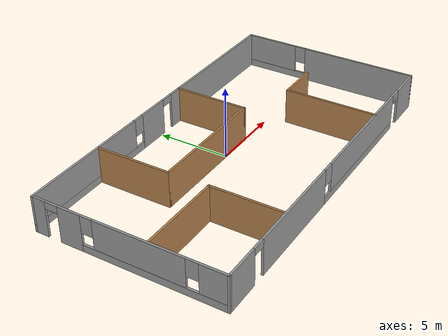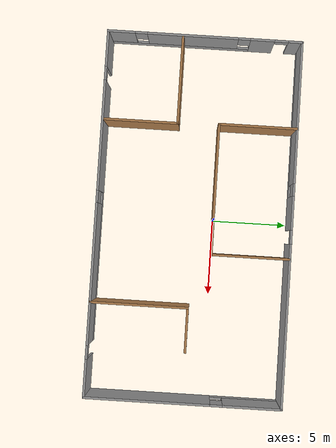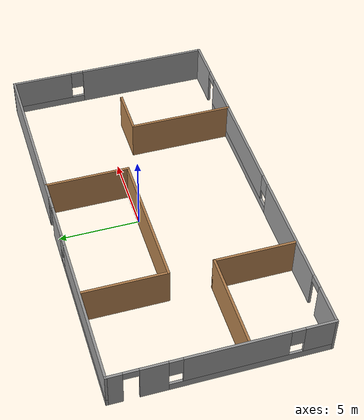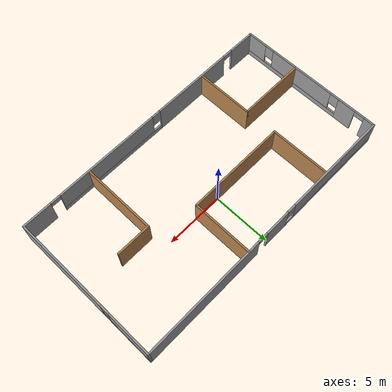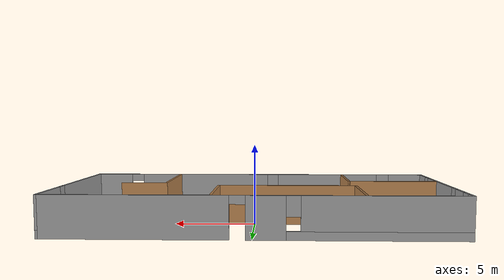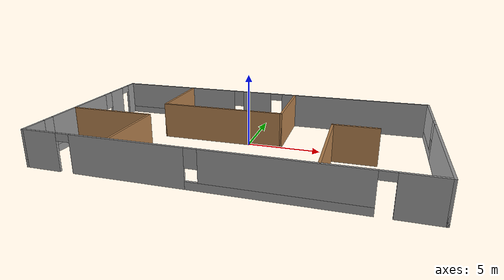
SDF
<?xml version='1.0'?>
<sdf version='1.6'>
  <model name='building'>
    <pose frame=''>-0.029421 -1.27289 0 0 -0 0</pose>
    <link name='Wall_0'>
      <pose frame=''>-12.05 0 0 0 0 -1.5708</pose>
      <visual name='Wall_0_Visual_0'>
        <pose frame=''>-6.00515 0 1.25 0 -0 0</pose>
        <geometry>
          <box>
            <size>0.989706 0.15 2.5</size>
          </box>
        </geometry>
        <material>
          <script>
            <uri>file://media/materials/scripts/gazebo.material</uri>
            <name>Gazebo/Grey</name>
          </script>
          <ambient>0.0823529 0.0823529 0.0823529 1</ambient>
        </material>
        <meta>
          <layer>0</layer>
        </meta>
      </visual>
      <collision name='Wall_0_Collision_0'>
        <geometry>
          <box>
            <size>0.989706 0.15 2.5</size>
          </box>
        </geometry>
        <pose frame=''>-6.00515 0 1.25 0 -0 0</pose>
      </collision>
      <visual name='Wall_0_Visual_1'>
        <pose frame=''>-3.80937 0 1.25 0 -0 0</pose>
        <geometry>
          <box>
            <size>1.60184 0.15 2.5</size>
          </box>
        </geometry>
        <material>
          <script>
            <uri>file://media/materials/scripts/gazebo.material</uri>
            <name>Gazebo/Grey</name>
          </script>
          <ambient>0.0823529 0.0823529 0.0823529 1</ambient>
        </material>
        <meta>
          <layer>0</layer>
        </meta>
      </visual>
      <collision name='Wall_0_Collision_1'>
        <geometry>
          <box>
            <size>1.60184 0.15 2.5</size>
          </box>
        </geometry>
        <pose frame=''>-3.80937 0 1.25 0 -0 0</pose>
      </collision>
      <visual name='Wall_0_Visual_2'>
        <pose frame=''>1.74578 0 0.25 0 -0 0</pose>
        <geometry>
          <box>
            <size>9.50845 0.15 0.5</size>
          </box>
        </geometry>
        <material>
          <script>
            <uri>file://media/materials/scripts/gazebo.material</uri>
            <name>Gazebo/Grey</name>
          </script>
          <ambient>0.0823529 0.0823529 0.0823529 1</ambient>
        </material>
        <meta>
          <layer>0</layer>
        </meta>
      </visual>
      <collision name='Wall_0_Collision_2'>
        <geometry>
          <box>
            <size>9.50845 0.15 0.5</size>
          </box>
        </geometry>
        <pose frame=''>1.74578 0 0.25 0 -0 0</pose>
      </collision>
      <visual name='Wall_0_Visual_3'>
        <pose frame=''>0.81488 0 1.5 0 -0 0</pose>
        <geometry>
          <box>
            <size>6.04666 0.15 2</size>
          </box>
        </geometry>
        <material>
          <script>
            <uri>file://media/materials/scripts/gazebo.material</uri>
            <name>Gazebo/Grey</name>
          </script>
          <ambient>0.0823529 0.0823529 0.0823529 1</ambient>
        </material>
        <meta>
          <layer>0</layer>
        </meta>
      </visual>
      <collision name='Wall_0_Collision_3'>
        <geometry>
          <box>
            <size>6.04666 0.15 2</size>
          </box>
        </geometry>
        <pose frame=''>0.81488 0 1.5 0 -0 0</pose>
      </collision>
      <visual name='Wall_0_Visual_4'>
        <pose frame=''>5.56911 0 1.5 0 -0 0</pose>
        <geometry>
          <box>
            <size>1.86179 0.15 2</size>
          </box>
        </geometry>
        <material>
          <script>
            <uri>file://media/materials/scripts/gazebo.material</uri>
            <name>Gazebo/Grey</name>
          </script>
          <ambient>0.0823529 0.0823529 0.0823529 1</ambient>
        </material>
        <meta>
          <layer>0</layer>
        </meta>
      </visual>
      <collision name='Wall_0_Collision_4'>
        <geometry>
          <box>
            <size>1.86179 0.15 2</size>
          </box>
        </geometry>
        <pose frame=''>5.56911 0 1.5 0 -0 0</pose>
      </collision>
      <visual name='Wall_0_Visual_5'>
        <pose frame=''>-2.60845 0 1.9 0 -0 0</pose>
        <geometry>
          <box>
            <size>0.8 0.15 1.2</size>
          </box>
        </geometry>
        <material>
          <script>
            <uri>file://media/materials/scripts/gazebo.material</uri>
            <name>Gazebo/Grey</name>
          </script>
          <ambient>0.0823529 0.0823529 0.0823529 1</ambient>
        </material>
        <meta>
          <layer>0</layer>
        </meta>
      </visual>
      <collision name='Wall_0_Collision_5'>
        <geometry>
          <box>
            <size>0.8 0.15 1.2</size>
          </box>
        </geometry>
        <pose frame=''>-2.60845 0 1.9 0 -0 0</pose>
      </collision>
      <visual name='Wall_0_Visual_6'>
        <pose frame=''>4.23821 0 1.9 0 -0 0</pose>
        <geometry>
          <box>
            <size>0.8 0.15 1.2</size>
          </box>
        </geometry>
        <material>
          <script>
            <uri>file://media/materials/scripts/gazebo.material</uri>
            <name>Gazebo/Grey</name>
          </script>
          <ambient>0.0823529 0.0823529 0.0823529 1</ambient>
        </material>
        <meta>
          <layer>0</layer>
        </meta>
      </visual>
      <collision name='Wall_0_Collision_6'>
        <geometry>
          <box>
            <size>0.8 0.15 1.2</size>
          </box>
        </geometry>
        <pose frame=''>4.23821 0 1.9 0 -0 0</pose>
      </collision>
      <visual name='Wall_0_Visual_7'>
        <pose frame=''>-5.06029 0 2.25 0 -0 0</pose>
        <geometry>
          <box>
            <size>0.9 0.15 0.5</size>
          </box>
        </geometry>
        <material>
          <script>
            <uri>file://media/materials/scripts/gazebo.material</uri>
            <name>Gazebo/Grey</name>
          </script>
          <ambient>0.0823529 0.0823529 0.0823529 1</ambient>
        </material>
        <meta>
          <layer>0</layer>
        </meta>
      </visual>
      <collision name='Wall_0_Collision_7'>
        <geometry>
          <box>
            <size>0.9 0.15 0.5</size>
          </box>
        </geometry>
        <pose frame=''>-5.06029 0 2.25 0 -0 0</pose>
      </collision>
    </link>
    <link name='Wall_1'>
      <pose frame=''>0 -6.425 0 0 -0 0</pose>
      <visual name='Wall_1_Visual_0'>
        <pose frame=''>-10.89 0 1.25 0 -0 0</pose>
        <geometry>
          <box>
            <size>2.47006 0.15 2.5</size>
          </box>
        </geometry>
        <material>
          <script>
            <uri>file://media/materials/scripts/gazebo.material</uri>
            <name>Gazebo/Grey</name>
          </script>
          <ambient>0.0823529 0.0823529 0.0823529 1</ambient>
        </material>
        <meta>
          <layer>0</layer>
        </meta>
      </visual>
      <collision name='Wall_1_Collision_0'>
        <geometry>
          <box>
            <size>2.47006 0.15 2.5</size>
          </box>
        </geometry>
        <pose frame=''>-10.89 0 1.25 0 -0 0</pose>
      </collision>
      <visual name='Wall_1_Visual_1'>
        <pose frame=''>-5.09738 0 1.25 0 -0 0</pose>
        <geometry>
          <box>
            <size>7.3151 0.15 2.5</size>
          </box>
        </geometry>
        <material>
          <script>
            <uri>file://media/materials/scripts/gazebo.material</uri>
            <name>Gazebo/Grey</name>
          </script>
          <ambient>0.0823529 0.0823529 0.0823529 1</ambient>
        </material>
        <meta>
          <layer>0</layer>
        </meta>
      </visual>
      <collision name='Wall_1_Collision_1'>
        <geometry>
          <box>
            <size>7.3151 0.15 2.5</size>
          </box>
        </geometry>
        <pose frame=''>-5.09738 0 1.25 0 -0 0</pose>
      </collision>
      <visual name='Wall_1_Visual_2'>
        <pose frame=''>10.8563 0 1.25 0 -0 0</pose>
        <geometry>
          <box>
            <size>2.53736 0.15 2.5</size>
          </box>
        </geometry>
        <material>
          <script>
            <uri>file://media/materials/scripts/gazebo.material</uri>
            <name>Gazebo/Grey</name>
          </script>
          <ambient>0.0823529 0.0823529 0.0823529 1</ambient>
        </material>
        <meta>
          <layer>0</layer>
        </meta>
      </visual>
      <collision name='Wall_1_Collision_2'>
        <geometry>
          <box>
            <size>2.53736 0.15 2.5</size>
          </box>
        </geometry>
        <pose frame=''>10.8563 0 1.25 0 -0 0</pose>
      </collision>
      <visual name='Wall_1_Visual_3'>
        <pose frame=''>3.6239 0 0.25 0 -0 0</pose>
        <geometry>
          <box>
            <size>10.1275 0.15 0.5</size>
          </box>
        </geometry>
        <material>
          <script>
            <uri>file://media/materials/scripts/gazebo.material</uri>
            <name>Gazebo/Grey</name>
          </script>
          <ambient>0.0823529 0.0823529 0.0823529 1</ambient>
        </material>
        <meta>
          <layer>0</layer>
        </meta>
      </visual>
      <collision name='Wall_1_Collision_3'>
        <geometry>
          <box>
            <size>10.1275 0.15 0.5</size>
          </box>
        </geometry>
        <pose frame=''>3.6239 0 0.25 0 -0 0</pose>
      </collision>
      <visual name='Wall_1_Visual_4'>
        <pose frame=''>4.0239 0 1.5 0 -0 0</pose>
        <geometry>
          <box>
            <size>9.32747 0.15 2</size>
          </box>
        </geometry>
        <material>
          <script>
            <uri>file://media/materials/scripts/gazebo.material</uri>
            <name>Gazebo/Grey</name>
          </script>
          <ambient>0.0823529 0.0823529 0.0823529 1</ambient>
        </material>
        <meta>
          <layer>0</layer>
        </meta>
      </visual>
      <collision name='Wall_1_Collision_4'>
        <geometry>
          <box>
            <size>9.32747 0.15 2</size>
          </box>
        </geometry>
        <pose frame=''>4.0239 0 1.5 0 -0 0</pose>
      </collision>
      <visual name='Wall_1_Visual_5'>
        <pose frame=''>-1.03983 0 1.9 0 -0 0</pose>
        <geometry>
          <box>
            <size>0.8 0.15 1.2</size>
          </box>
        </geometry>
        <material>
          <script>
            <uri>file://media/materials/scripts/gazebo.material</uri>
            <name>Gazebo/Grey</name>
          </script>
          <ambient>0.0823529 0.0823529 0.0823529 1</ambient>
        </material>
        <meta>
          <layer>0</layer>
        </meta>
      </visual>
      <collision name='Wall_1_Collision_5'>
        <geometry>
          <box>
            <size>0.8 0.15 1.2</size>
          </box>
        </geometry>
        <pose frame=''>-1.03983 0 1.9 0 -0 0</pose>
      </collision>
      <visual name='Wall_1_Visual_6'>
        <pose frame=''>-9.20494 0 2.25 0 -0 0</pose>
        <geometry>
          <box>
            <size>0.9 0.15 0.5</size>
          </box>
        </geometry>
        <material>
          <script>
            <uri>file://media/materials/scripts/gazebo.material</uri>
            <name>Gazebo/Grey</name>
          </script>
          <ambient>0.0823529 0.0823529 0.0823529 1</ambient>
        </material>
        <meta>
          <layer>0</layer>
        </meta>
      </visual>
      <collision name='Wall_1_Collision_6'>
        <geometry>
          <box>
            <size>0.9 0.15 0.5</size>
          </box>
        </geometry>
        <pose frame=''>-9.20494 0 2.25 0 -0 0</pose>
      </collision>
      <visual name='Wall_1_Visual_7'>
        <pose frame=''>9.13764 0 2.25 0 -0 0</pose>
        <geometry>
          <box>
            <size>0.9 0.15 0.5</size>
          </box>
        </geometry>
        <material>
          <script>
            <uri>file://media/materials/scripts/gazebo.material</uri>
            <name>Gazebo/Grey</name>
          </script>
          <ambient>0.0823529 0.0823529 0.0823529 1</ambient>
        </material>
        <meta>
          <layer>0</layer>
        </meta>
      </visual>
      <collision name='Wall_1_Collision_7'>
        <geometry>
          <box>
            <size>0.9 0.15 0.5</size>
          </box>
        </geometry>
        <pose frame=''>9.13764 0 2.25 0 -0 0</pose>
      </collision>
    </link>
    <link name='Wall_10'>
      <collision name='Wall_10_Collision'>
        <geometry>
          <box>
            <size>3 0.15 2.5</size>
          </box>
        </geometry>
        <pose frame=''>0 0 1.25 0 -0 0</pose>
      </collision>
      <visual name='Wall_10_Visual'>
        <pose frame=''>0 0 1.25 0 -0 0</pose>
        <geometry>
          <box>
            <size>3 0.15 2.5</size>
          </box>
        </geometry>
        <material>
          <script>
            <uri>file://media/materials/scripts/gazebo.material</uri>
            <name>Gazebo/Wood</name>
          </script>
          <ambient>1 1 1 1</ambient>
        </material>
        <meta>
          <layer>0</layer>
        </meta>
      </visual>
      <pose frame=''>7.30122 -0.039357 0 0 -0 0</pose>
    </link>
    <link name='Wall_12'>
      <collision name='Wall_12_Collision'>
        <geometry>
          <box>
            <size>6 0.15 2.5</size>
          </box>
        </geometry>
        <pose frame=''>0 0 1.25 0 -0 0</pose>
      </collision>
      <visual name='Wall_12_Visual'>
        <pose frame=''>0 0 1.25 0 -0 0</pose>
        <geometry>
          <box>
            <size>6 0.15 2.5</size>
          </box>
        </geometry>
        <material>
          <script>
            <uri>file://media/materials/scripts/gazebo.material</uri>
            <name>Gazebo/Wood</name>
          </script>
          <ambient>1 1 1 1</ambient>
        </material>
        <meta>
          <layer>0</layer>
        </meta>
      </visual>
      <pose frame=''>-9.10187 -1.46254 0 0 -0 0</pose>
    </link>
    <link name='Wall_13'>
      <collision name='Wall_13_Collision'>
        <geometry>
          <box>
            <size>5 0.15 2.5</size>
          </box>
        </geometry>
        <pose frame=''>0 0 1.25 0 -0 0</pose>
      </collision>
      <visual name='Wall_13_Visual'>
        <pose frame=''>0 0 1.25 0 -0 0</pose>
        <geometry>
          <box>
            <size>5 0.15 2.5</size>
          </box>
        </geometry>
        <material>
          <script>
            <uri>file://media/materials/scripts/gazebo.material</uri>
            <name>Gazebo/Wood</name>
          </script>
          <ambient>1 1 1 1</ambient>
        </material>
        <meta>
          <layer>0</layer>
        </meta>
      </visual>
      <pose frame=''>-6.17687 -3.88754 0 0 0 -1.5708</pose>
    </link>
    <link name='Wall_2'>
      <pose frame=''>12.05 0 0 0 -0 1.5708</pose>
      <visual name='Wall_2_Visual_0'>
        <pose frame=''>-2.35395 0 1.25 0 -0 0</pose>
        <geometry>
          <box>
            <size>8.2921 0.15 2.5</size>
          </box>
        </geometry>
        <material>
          <script>
            <uri>file://media/materials/scripts/gazebo.material</uri>
            <name>Gazebo/Grey</name>
          </script>
          <ambient>0.0823529 0.0823529 0.0823529 1</ambient>
        </material>
        <meta>
          <layer>0</layer>
        </meta>
      </visual>
      <collision name='Wall_2_Collision_0'>
        <geometry>
          <box>
            <size>8.2921 0.15 2.5</size>
          </box>
        </geometry>
        <pose frame=''>-2.35395 0 1.25 0 -0 0</pose>
      </collision>
      <visual name='Wall_2_Visual_1'>
        <pose frame=''>4.14605 0 0.25 0 -0 0</pose>
        <geometry>
          <box>
            <size>4.7079 0.15 0.5</size>
          </box>
        </geometry>
        <material>
          <script>
            <uri>file://media/materials/scripts/gazebo.material</uri>
            <name>Gazebo/Grey</name>
          </script>
          <ambient>0.0823529 0.0823529 0.0823529 1</ambient>
        </material>
        <meta>
          <layer>0</layer>
        </meta>
      </visual>
      <collision name='Wall_2_Collision_1'>
        <geometry>
          <box>
            <size>4.7079 0.15 0.5</size>
          </box>
        </geometry>
        <pose frame=''>4.14605 0 0.25 0 -0 0</pose>
      </collision>
      <visual name='Wall_2_Visual_2'>
        <pose frame=''>4.54605 0 1.5 0 -0 0</pose>
        <geometry>
          <box>
            <size>3.9079 0.15 2</size>
          </box>
        </geometry>
        <material>
          <script>
            <uri>file://media/materials/scripts/gazebo.material</uri>
            <name>Gazebo/Grey</name>
          </script>
          <ambient>0.0823529 0.0823529 0.0823529 1</ambient>
        </material>
        <meta>
          <layer>0</layer>
        </meta>
      </visual>
      <collision name='Wall_2_Collision_2'>
        <geometry>
          <box>
            <size>3.9079 0.15 2</size>
          </box>
        </geometry>
        <pose frame=''>4.54605 0 1.5 0 -0 0</pose>
      </collision>
      <visual name='Wall_2_Visual_3'>
        <pose frame=''>2.1921 0 1.9 0 -0 0</pose>
        <geometry>
          <box>
            <size>0.8 0.15 1.2</size>
          </box>
        </geometry>
        <material>
          <script>
            <uri>file://media/materials/scripts/gazebo.material</uri>
            <name>Gazebo/Grey</name>
          </script>
          <ambient>0.0823529 0.0823529 0.0823529 1</ambient>
        </material>
        <meta>
          <layer>0</layer>
        </meta>
      </visual>
      <collision name='Wall_2_Collision_3'>
        <geometry>
          <box>
            <size>0.8 0.15 1.2</size>
          </box>
        </geometry>
        <pose frame=''>2.1921 0 1.9 0 -0 0</pose>
      </collision>
    </link>
    <link name='Wall_3'>
      <pose frame=''>0 6.425 0 0 -0 3.14159</pose>
      <visual name='Wall_3_Visual_0'>
        <pose frame=''>-6.70437 0 1.25 0 -0 0</pose>
        <geometry>
          <box>
            <size>10.8413 0.15 2.5</size>
          </box>
        </geometry>
        <material>
          <script>
            <uri>file://media/materials/scripts/gazebo.material</uri>
            <name>Gazebo/Grey</name>
          </script>
          <ambient>0.0823529 0.0823529 0.0823529 1</ambient>
        </material>
        <meta>
          <layer>0</layer>
        </meta>
      </visual>
      <collision name='Wall_3_Collision_0'>
        <geometry>
          <box>
            <size>10.8413 0.15 2.5</size>
          </box>
        </geometry>
        <pose frame=''>-6.70437 0 1.25 0 -0 0</pose>
      </collision>
      <visual name='Wall_3_Visual_1'>
        <pose frame=''>0.741002 0 1.25 0 -0 0</pose>
        <geometry>
          <box>
            <size>2.2495 0.15 2.5</size>
          </box>
        </geometry>
        <material>
          <script>
            <uri>file://media/materials/scripts/gazebo.material</uri>
            <name>Gazebo/Grey</name>
          </script>
          <ambient>0.0823529 0.0823529 0.0823529 1</ambient>
        </material>
        <meta>
          <layer>0</layer>
        </meta>
      </visual>
      <collision name='Wall_3_Collision_1'>
        <geometry>
          <box>
            <size>2.2495 0.15 2.5</size>
          </box>
        </geometry>
        <pose frame=''>0.741002 0 1.25 0 -0 0</pose>
      </collision>
      <visual name='Wall_3_Visual_2'>
        <pose frame=''>6.99538 0 0.25 0 -0 0</pose>
        <geometry>
          <box>
            <size>10.2592 0.15 0.5</size>
          </box>
        </geometry>
        <material>
          <script>
            <uri>file://media/materials/scripts/gazebo.material</uri>
            <name>Gazebo/Grey</name>
          </script>
          <ambient>0.0823529 0.0823529 0.0823529 1</ambient>
        </material>
        <meta>
          <layer>0</layer>
        </meta>
      </visual>
      <collision name='Wall_3_Collision_2'>
        <geometry>
          <box>
            <size>10.2592 0.15 0.5</size>
          </box>
        </geometry>
        <pose frame=''>6.99538 0 0.25 0 -0 0</pose>
      </collision>
      <visual name='Wall_3_Visual_3'>
        <pose frame=''>7.39538 0 1.5 0 -0 0</pose>
        <geometry>
          <box>
            <size>9.45925 0.15 2</size>
          </box>
        </geometry>
        <material>
          <script>
            <uri>file://media/materials/scripts/gazebo.material</uri>
            <name>Gazebo/Grey</name>
          </script>
          <ambient>0.0823529 0.0823529 0.0823529 1</ambient>
        </material>
        <meta>
          <layer>0</layer>
        </meta>
      </visual>
      <collision name='Wall_3_Collision_3'>
        <geometry>
          <box>
            <size>9.45925 0.15 2</size>
          </box>
        </geometry>
        <pose frame=''>7.39538 0 1.5 0 -0 0</pose>
      </collision>
      <visual name='Wall_3_Visual_4'>
        <pose frame=''>2.26575 0 1.9 0 -0 0</pose>
        <geometry>
          <box>
            <size>0.8 0.15 1.2</size>
          </box>
        </geometry>
        <material>
          <script>
            <uri>file://media/materials/scripts/gazebo.material</uri>
            <name>Gazebo/Grey</name>
          </script>
          <ambient>0.0823529 0.0823529 0.0823529 1</ambient>
        </material>
        <meta>
          <layer>0</layer>
        </meta>
      </visual>
      <collision name='Wall_3_Collision_4'>
        <geometry>
          <box>
            <size>0.8 0.15 1.2</size>
          </box>
        </geometry>
        <pose frame=''>2.26575 0 1.9 0 -0 0</pose>
      </collision>
      <visual name='Wall_3_Visual_5'>
        <pose frame=''>-0.833748 0 2.25 0 -0 0</pose>
        <geometry>
          <box>
            <size>0.9 0.15 0.5</size>
          </box>
        </geometry>
        <material>
          <script>
            <uri>file://media/materials/scripts/gazebo.material</uri>
            <name>Gazebo/Grey</name>
          </script>
          <ambient>0.0823529 0.0823529 0.0823529 1</ambient>
        </material>
        <meta>
          <layer>0</layer>
        </meta>
      </visual>
      <collision name='Wall_3_Collision_5'>
        <geometry>
          <box>
            <size>0.9 0.15 0.5</size>
          </box>
        </geometry>
        <pose frame=''>-0.833748 0 2.25 0 -0 0</pose>
      </collision>
    </link>
    <link name='Wall_5'>
      <collision name='Wall_5_Collision'>
        <geometry>
          <box>
            <size>5.25 0.15 2.5</size>
          </box>
        </geometry>
        <pose frame=''>0 0 1.25 0 -0 0</pose>
      </collision>
      <visual name='Wall_5_Visual'>
        <pose frame=''>0 0 1.25 0 -0 0</pose>
        <geometry>
          <box>
            <size>5.25 0.15 2.5</size>
          </box>
        </geometry>
        <material>
          <script>
            <uri>file://media/materials/scripts/gazebo.material</uri>
            <name>Gazebo/Wood</name>
          </script>
          <ambient>1 1 1 1</ambient>
        </material>
        <meta>
          <layer>0</layer>
        </meta>
      </visual>
      <pose frame=''>-6.29048 3.82874 0 0 0 -1.5708</pose>
    </link>
    <link name='Wall_6'>
      <collision name='Wall_6_Collision'>
        <geometry>
          <box>
            <size>8.75 0.15 2.5</size>
          </box>
        </geometry>
        <pose frame=''>0 0 1.25 0 -0 0</pose>
      </collision>
      <visual name='Wall_6_Visual'>
        <pose frame=''>0 0 1.25 0 -0 0</pose>
        <geometry>
          <box>
            <size>8.75 0.15 2.5</size>
          </box>
        </geometry>
        <material>
          <script>
            <uri>file://media/materials/scripts/gazebo.material</uri>
            <name>Gazebo/Wood</name>
          </script>
          <ambient>1 1 1 1</ambient>
        </material>
        <meta>
          <layer>0</layer>
        </meta>
      </visual>
      <pose frame=''>-1.99048 1.27874 0 0 -0 0</pose>
    </link>
    <link name='Wall_7'>
      <collision name='Wall_7_Collision'>
        <geometry>
          <box>
            <size>5.25 0.15 2.5</size>
          </box>
        </geometry>
        <pose frame=''>0 0 1.25 0 -0 0</pose>
      </collision>
      <visual name='Wall_7_Visual'>
        <pose frame=''>0 0 1.25 0 -0 0</pose>
        <geometry>
          <box>
            <size>5.25 0.15 2.5</size>
          </box>
        </geometry>
        <material>
          <script>
            <uri>file://media/materials/scripts/gazebo.material</uri>
            <name>Gazebo/Wood</name>
          </script>
          <ambient>1 1 1 1</ambient>
        </material>
        <meta>
          <layer>0</layer>
        </meta>
      </visual>
      <pose frame=''>2.30952 3.82874 0 0 -0 1.5708</pose>
    </link>
    <link name='Wall_9'>
      <collision name='Wall_9_Collision'>
        <geometry>
          <box>
            <size>6.5 0.15 2.5</size>
          </box>
        </geometry>
        <pose frame=''>0 0 1.25 0 -0 0</pose>
      </collision>
      <visual name='Wall_9_Visual'>
        <pose frame=''>0 0 1.25 0 -0 0</pose>
        <geometry>
          <box>
            <size>6.5 0.15 2.5</size>
          </box>
        </geometry>
        <material>
          <script>
            <uri>file://media/materials/scripts/gazebo.material</uri>
            <name>Gazebo/Wood</name>
          </script>
          <ambient>1 1 1 1</ambient>
        </material>
        <meta>
          <layer>0</layer>
        </meta>
      </visual>
      <pose frame=''>5.87622 -3.21436 0 0 -0 1.5708</pose>
    </link>
    <static>1</static>
  </model>
</sdf>
